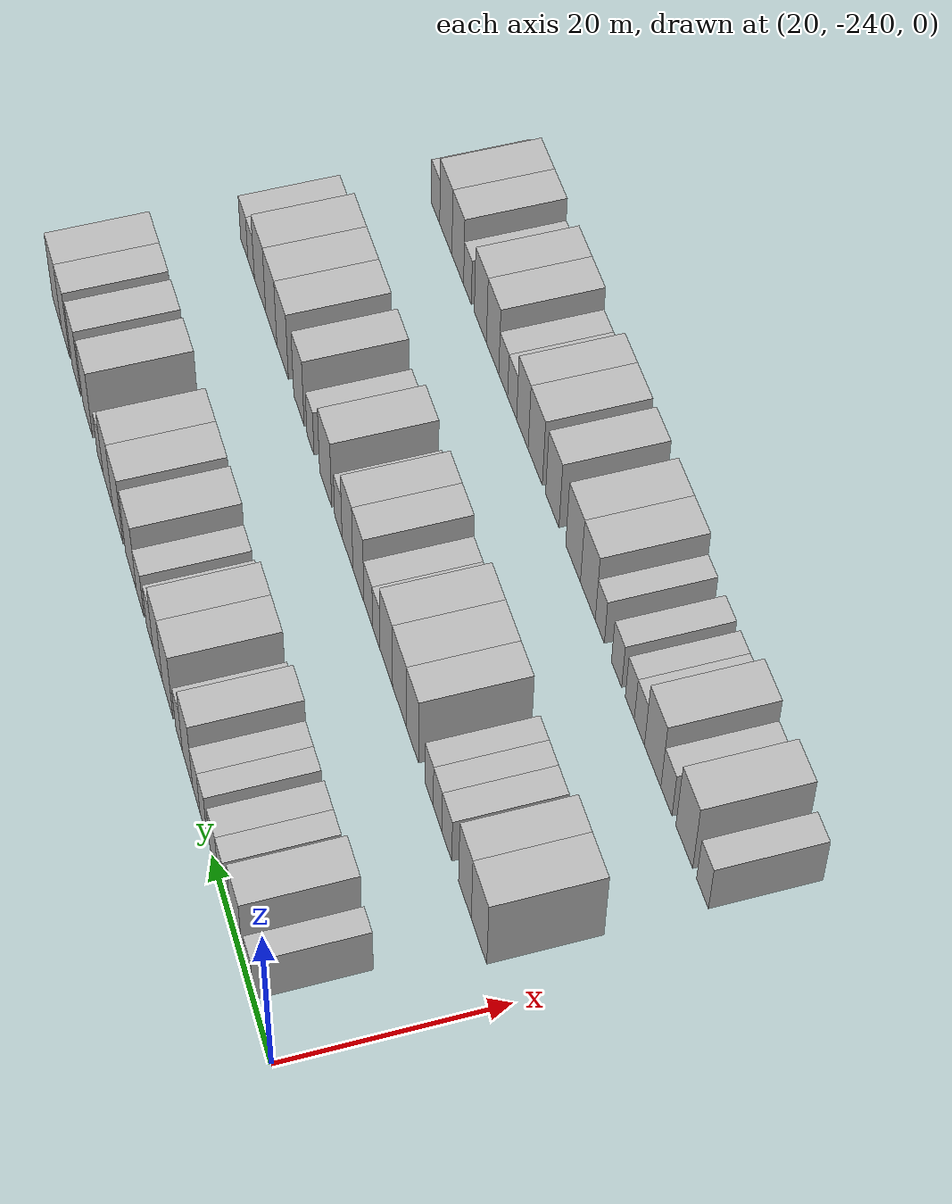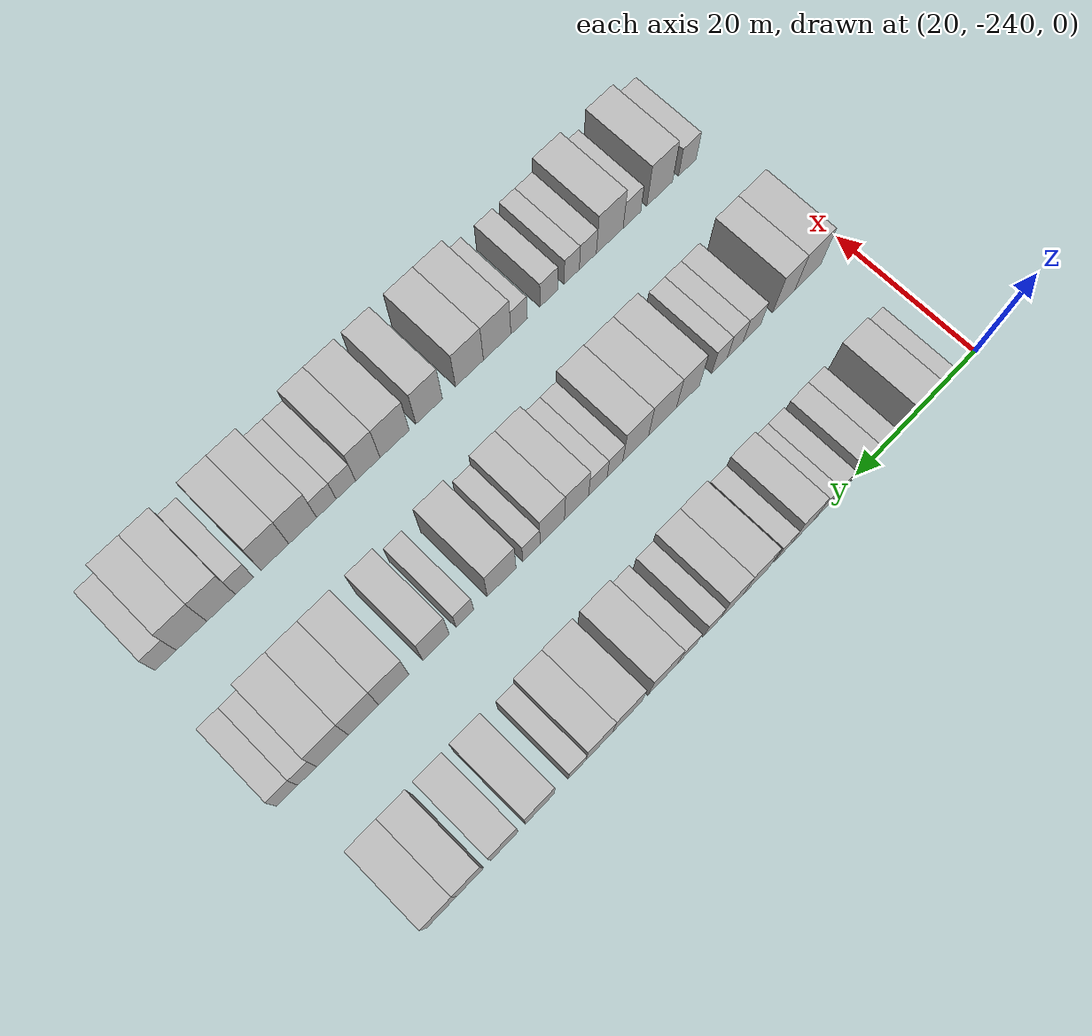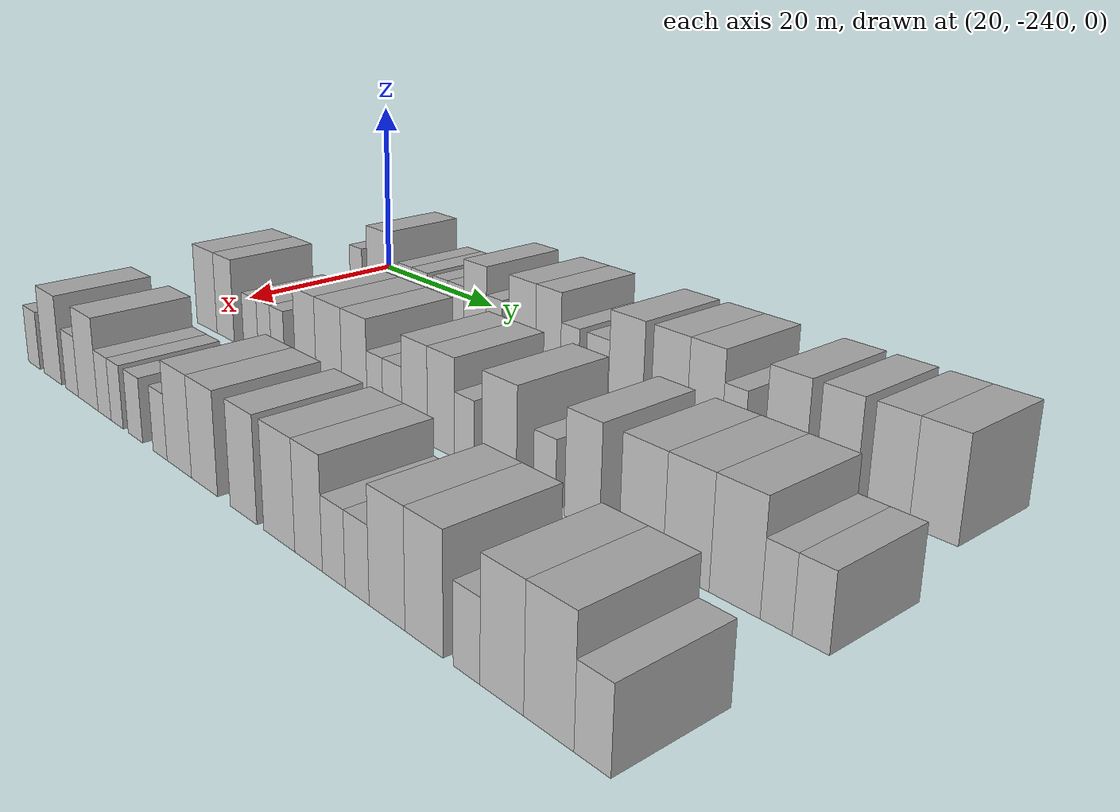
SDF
<sdf version="1.6">
 <world name="default">
  <model name="building_1">
   <static>1</static>
   <pose>25.0000 -232.7537 0 0.000000 0.000000 0.000000</pose>
   <link name="link">
    <pose>0 0 3.00 0 0 0</pose>
    <collision name="collision"><geometry><box><size>10.0000 2.4925 6.0000</size></box></geometry></collision>
    <visual name="visual">
     <cast_shadows>0</cast_shadows>
     <geometry><box><size>10.0000 2.4925 6.0000</size></box></geometry>
     <material>
      <script>
       <uri>model://HANNAS_wall/materials/scripts</uri>
       <uri>model://HANNAS_wall/materials/textures</uri>
       <name>vrc/HANNAS_wall</name>
      </script>
     </material>
    </visual>
   </link>
  </model>
  <model name="building_2">
   <static>1</static>
   <pose>25.0000 -228.5154 0 0.000000 0.000000 0.000000</pose>
   <link name="link">
    <pose>0 0 4.50 0 0 0</pose>
    <collision name="collision"><geometry><box><size>10.0000 3.9841 9.0000</size></box></geometry></collision>
    <visual name="visual">
     <cast_shadows>0</cast_shadows>
     <geometry><box><size>10.0000 3.9841 9.0000</size></box></geometry>
     <material>
      <script>
       <uri>model://HANNAS_wall/materials/scripts</uri>
       <uri>model://HANNAS_wall/materials/textures</uri>
       <name>vrc/HANNAS_wall</name>
      </script>
     </material>
    </visual>
   </link>
  </model>
  <model name="building_3">
   <static>1</static>
   <pose>25.0000 -223.2661 0 0.000000 0.000000 0.000000</pose>
   <link name="link">
    <pose>0 0 3.00 0 0 0</pose>
    <collision name="collision"><geometry><box><size>10.0000 2.5146 6.0000</size></box></geometry></collision>
    <visual name="visual">
     <cast_shadows>0</cast_shadows>
     <geometry><box><size>10.0000 2.5146 6.0000</size></box></geometry>
     <material>
      <script>
       <uri>model://HANNAS_wall/materials/scripts</uri>
       <uri>model://HANNAS_wall/materials/textures</uri>
       <name>vrc/HANNAS_wall</name>
      </script>
     </material>
    </visual>
   </link>
  </model>
  <model name="building_4">
   <static>1</static>
   <pose>25.0000 -220.5553 0 0.000000 0.000000 0.000000</pose>
   <link name="link">
    <pose>0 0 3.00 0 0 0</pose>
    <collision name="collision"><geometry><box><size>10.0000 2.9072 6.0000</size></box></geometry></collision>
    <visual name="visual">
     <cast_shadows>0</cast_shadows>
     <geometry><box><size>10.0000 2.9072 6.0000</size></box></geometry>
     <material>
      <script>
       <uri>model://HANNAS_wall/materials/scripts</uri>
       <uri>model://HANNAS_wall/materials/textures</uri>
       <name>vrc/HANNAS_wall</name>
      </script>
     </material>
    </visual>
   </link>
  </model>
  <model name="building_5">
   <static>1</static>
   <pose>25.0000 -216.8551 0 0.000000 0.000000 0.000000</pose>
   <link name="link">
    <pose>0 0 3.00 0 0 0</pose>
    <collision name="collision"><geometry><box><size>10.0000 2.4931 6.0000</size></box></geometry></collision>
    <visual name="visual">
     <cast_shadows>0</cast_shadows>
     <geometry><box><size>10.0000 2.4931 6.0000</size></box></geometry>
     <material>
      <script>
       <uri>model://HANNAS_wall/materials/scripts</uri>
       <uri>model://HANNAS_wall/materials/textures</uri>
       <name>vrc/HANNAS_wall</name>
      </script>
     </material>
    </visual>
   </link>
  </model>
  <model name="building_6">
   <static>1</static>
   <pose>25.0000 -214.2833 0 0.000000 0.000000 0.000000</pose>
   <link name="link">
    <pose>0 0 3.00 0 0 0</pose>
    <collision name="collision"><geometry><box><size>10.0000 2.6505 6.0000</size></box></geometry></collision>
    <visual name="visual">
     <cast_shadows>0</cast_shadows>
     <geometry><box><size>10.0000 2.6505 6.0000</size></box></geometry>
     <material>
      <script>
       <uri>model://HANNAS_wall/materials/scripts</uri>
       <uri>model://HANNAS_wall/materials/textures</uri>
       <name>vrc/HANNAS_wall</name>
      </script>
     </material>
    </visual>
   </link>
  </model>
  <model name="building_7">
   <static>1</static>
   <pose>25.0000 -211.0979 0 0.000000 0.000000 0.000000</pose>
   <link name="link">
    <pose>0 0 4.50 0 0 0</pose>
    <collision name="collision"><geometry><box><size>10.0000 3.7204 9.0000</size></box></geometry></collision>
    <visual name="visual">
     <cast_shadows>0</cast_shadows>
     <geometry><box><size>10.0000 3.7204 9.0000</size></box></geometry>
     <material>
      <script>
       <uri>model://HANNAS_wall/materials/scripts</uri>
       <uri>model://HANNAS_wall/materials/textures</uri>
       <name>vrc/HANNAS_wall</name>
      </script>
     </material>
    </visual>
   </link>
  </model>
  <model name="building_8">
   <static>1</static>
   <pose>25.0000 -207.9885 0 0.000000 0.000000 0.000000</pose>
   <link name="link">
    <pose>0 0 3.00 0 0 0</pose>
    <collision name="collision"><geometry><box><size>10.0000 2.4984 6.0000</size></box></geometry></collision>
    <visual name="visual">
     <cast_shadows>0</cast_shadows>
     <geometry><box><size>10.0000 2.4984 6.0000</size></box></geometry>
     <material>
      <script>
       <uri>model://HANNAS_wall/materials/scripts</uri>
       <uri>model://HANNAS_wall/materials/textures</uri>
       <name>vrc/HANNAS_wall</name>
      </script>
     </material>
    </visual>
   </link>
  </model>
  <model name="building_9">
   <static>1</static>
   <pose>25.0000 -203.7251 0 0.000000 0.000000 0.000000</pose>
   <link name="link">
    <pose>0 0 4.50 0 0 0</pose>
    <collision name="collision"><geometry><box><size>10.0000 4.0283 9.0000</size></box></geometry></collision>
    <visual name="visual">
     <cast_shadows>0</cast_shadows>
     <geometry><box><size>10.0000 4.0283 9.0000</size></box></geometry>
     <material>
      <script>
       <uri>model://HANNAS_wall/materials/scripts</uri>
       <uri>model://HANNAS_wall/materials/textures</uri>
       <name>vrc/HANNAS_wall</name>
      </script>
     </material>
    </visual>
   </link>
  </model>
  <model name="building_10">
   <static>1</static>
   <pose>25.0000 -199.9079 0 0.000000 0.000000 0.000000</pose>
   <link name="link">
    <pose>0 0 4.50 0 0 0</pose>
    <collision name="collision"><geometry><box><size>10.0000 3.6059 9.0000</size></box></geometry></collision>
    <visual name="visual">
     <cast_shadows>0</cast_shadows>
     <geometry><box><size>10.0000 3.6059 9.0000</size></box></geometry>
     <material>
      <script>
       <uri>model://HANNAS_wall/materials/scripts</uri>
       <uri>model://HANNAS_wall/materials/textures</uri>
       <name>vrc/HANNAS_wall</name>
      </script>
     </material>
    </visual>
   </link>
  </model>
  <model name="building_11">
   <static>1</static>
   <pose>25.0000 -196.8338 0 0.000000 0.000000 0.000000</pose>
   <link name="link">
    <pose>0 0 3.00 0 0 0</pose>
    <collision name="collision"><geometry><box><size>10.0000 2.5424 6.0000</size></box></geometry></collision>
    <visual name="visual">
     <cast_shadows>0</cast_shadows>
     <geometry><box><size>10.0000 2.5424 6.0000</size></box></geometry>
     <material>
      <script>
       <uri>model://HANNAS_wall/materials/scripts</uri>
       <uri>model://HANNAS_wall/materials/textures</uri>
       <name>vrc/HANNAS_wall</name>
      </script>
     </material>
    </visual>
   </link>
  </model>
  <model name="building_12">
   <static>1</static>
   <pose>25.0000 -193.0721 0 0.000000 0.000000 0.000000</pose>
   <link name="link">
    <pose>0 0 3.00 0 0 0</pose>
    <collision name="collision"><geometry><box><size>10.0000 2.9810 6.0000</size></box></geometry></collision>
    <visual name="visual">
     <cast_shadows>0</cast_shadows>
     <geometry><box><size>10.0000 2.9810 6.0000</size></box></geometry>
     <material>
      <script>
       <uri>model://HANNAS_wall/materials/scripts</uri>
       <uri>model://HANNAS_wall/materials/textures</uri>
       <name>vrc/HANNAS_wall</name>
      </script>
     </material>
    </visual>
   </link>
  </model>
  <model name="building_13">
   <static>1</static>
   <pose>25.0000 -189.4063 0 0.000000 0.000000 0.000000</pose>
   <link name="link">
    <pose>0 0 4.50 0 0 0</pose>
    <collision name="collision"><geometry><box><size>10.0000 4.3505 9.0000</size></box></geometry></collision>
    <visual name="visual">
     <cast_shadows>0</cast_shadows>
     <geometry><box><size>10.0000 4.3505 9.0000</size></box></geometry>
     <material>
      <script>
       <uri>model://HANNAS_wall/materials/scripts</uri>
       <uri>model://HANNAS_wall/materials/textures</uri>
       <name>vrc/HANNAS_wall</name>
      </script>
     </material>
    </visual>
   </link>
  </model>
  <model name="building_14">
   <static>1</static>
   <pose>25.0000 -184.1041 0 0.000000 0.000000 0.000000</pose>
   <link name="link">
    <pose>0 0 4.50 0 0 0</pose>
    <collision name="collision"><geometry><box><size>10.0000 4.2540 9.0000</size></box></geometry></collision>
    <visual name="visual">
     <cast_shadows>0</cast_shadows>
     <geometry><box><size>10.0000 4.2540 9.0000</size></box></geometry>
     <material>
      <script>
       <uri>model://HANNAS_wall/materials/scripts</uri>
       <uri>model://HANNAS_wall/materials/textures</uri>
       <name>vrc/HANNAS_wall</name>
      </script>
     </material>
    </visual>
   </link>
  </model>
  <model name="building_15">
   <static>1</static>
   <pose>25.0000 -180.0002 0 0.000000 0.000000 0.000000</pose>
   <link name="link">
    <pose>0 0 4.50 0 0 0</pose>
    <collision name="collision"><geometry><box><size>10.0000 3.9536 9.0000</size></box></geometry></collision>
    <visual name="visual">
     <cast_shadows>0</cast_shadows>
     <geometry><box><size>10.0000 3.9536 9.0000</size></box></geometry>
     <material>
      <script>
       <uri>model://HANNAS_wall/materials/scripts</uri>
       <uri>model://HANNAS_wall/materials/textures</uri>
       <name>vrc/HANNAS_wall</name>
      </script>
     </material>
    </visual>
   </link>
  </model>
  <model name="building_16">
   <static>1</static>
   <pose>25.0000 -176.7750 0 0.000000 0.000000 0.000000</pose>
   <link name="link">
    <pose>0 0 3.00 0 0 0</pose>
    <collision name="collision"><geometry><box><size>10.0000 2.4969 6.0000</size></box></geometry></collision>
    <visual name="visual">
     <cast_shadows>0</cast_shadows>
     <geometry><box><size>10.0000 2.4969 6.0000</size></box></geometry>
     <material>
      <script>
       <uri>model://HANNAS_wall/materials/scripts</uri>
       <uri>model://HANNAS_wall/materials/textures</uri>
       <name>vrc/HANNAS_wall</name>
      </script>
     </material>
    </visual>
   </link>
  </model>
  <model name="building_17">
   <static>1</static>
   <pose>25.0000 -171.4529 0 0.000000 0.000000 0.000000</pose>
   <link name="link">
    <pose>0 0 4.50 0 0 0</pose>
    <collision name="collision"><geometry><box><size>10.0000 4.1472 9.0000</size></box></geometry></collision>
    <visual name="visual">
     <cast_shadows>0</cast_shadows>
     <geometry><box><size>10.0000 4.1472 9.0000</size></box></geometry>
     <material>
      <script>
       <uri>model://HANNAS_wall/materials/scripts</uri>
       <uri>model://HANNAS_wall/materials/textures</uri>
       <name>vrc/HANNAS_wall</name>
      </script>
     </material>
    </visual>
   </link>
  </model>
  <model name="building_18">
   <static>1</static>
   <pose>25.0000 -166.4618 0 0.000000 0.000000 0.000000</pose>
   <link name="link">
    <pose>0 0 4.50 0 0 0</pose>
    <collision name="collision"><geometry><box><size>10.0000 3.8350 9.0000</size></box></geometry></collision>
    <visual name="visual">
     <cast_shadows>0</cast_shadows>
     <geometry><box><size>10.0000 3.8350 9.0000</size></box></geometry>
     <material>
      <script>
       <uri>model://HANNAS_wall/materials/scripts</uri>
       <uri>model://HANNAS_wall/materials/textures</uri>
       <name>vrc/HANNAS_wall</name>
      </script>
     </material>
    </visual>
   </link>
  </model>
  <model name="building_19">
   <static>1</static>
   <pose>25.0000 -161.6839 0 0.000000 0.000000 0.000000</pose>
   <link name="link">
    <pose>0 0 4.50 0 0 0</pose>
    <collision name="collision"><geometry><box><size>10.0000 3.7208 9.0000</size></box></geometry></collision>
    <visual name="visual">
     <cast_shadows>0</cast_shadows>
     <geometry><box><size>10.0000 3.7208 9.0000</size></box></geometry>
     <material>
      <script>
       <uri>model://HANNAS_wall/materials/scripts</uri>
       <uri>model://HANNAS_wall/materials/textures</uri>
       <name>vrc/HANNAS_wall</name>
      </script>
     </material>
    </visual>
   </link>
  </model>
  <model name="building_20">
   <static>1</static>
   <pose>25.0000 -157.7794 0 0.000000 0.000000 0.000000</pose>
   <link name="link">
    <pose>0 0 4.50 0 0 0</pose>
    <collision name="collision"><geometry><box><size>10.0000 4.0881 9.0000</size></box></geometry></collision>
    <visual name="visual">
     <cast_shadows>0</cast_shadows>
     <geometry><box><size>10.0000 4.0881 9.0000</size></box></geometry>
     <material>
      <script>
       <uri>model://HANNAS_wall/materials/scripts</uri>
       <uri>model://HANNAS_wall/materials/textures</uri>
       <name>vrc/HANNAS_wall</name>
      </script>
     </material>
    </visual>
   </link>
  </model>
  <model name="building_123">
   <static>1</static>
   <pose>44.0000 -233.7821 0 0.000000 0.000000 0.000000</pose>
   <link name="link">
    <pose>0 0 4.50 0 0 0</pose>
    <collision name="collision"><geometry><box><size>10.0000 4.4358 9.0000</size></box></geometry></collision>
    <visual name="visual">
     <cast_shadows>0</cast_shadows>
     <geometry><box><size>10.0000 4.4358 9.0000</size></box></geometry>
     <material>
      <script>
       <uri>model://HANNAS_wall/materials/scripts</uri>
       <uri>model://HANNAS_wall/materials/textures</uri>
       <name>vrc/HANNAS_wall</name>
      </script>
     </material>
    </visual>
   </link>
  </model>
  <model name="building_124">
   <static>1</static>
   <pose>44.0000 -229.7190 0 0.000000 0.000000 0.000000</pose>
   <link name="link">
    <pose>0 0 4.50 0 0 0</pose>
    <collision name="collision"><geometry><box><size>10.0000 3.6904 9.0000</size></box></geometry></collision>
    <visual name="visual">
     <cast_shadows>0</cast_shadows>
     <geometry><box><size>10.0000 3.6904 9.0000</size></box></geometry>
     <material>
      <script>
       <uri>model://HANNAS_wall/materials/scripts</uri>
       <uri>model://HANNAS_wall/materials/textures</uri>
       <name>vrc/HANNAS_wall</name>
      </script>
     </material>
    </visual>
   </link>
  </model>
  <model name="building_125">
   <static>1</static>
   <pose>44.0000 -224.3954 0 0.000000 0.000000 0.000000</pose>
   <link name="link">
    <pose>0 0 3.00 0 0 0</pose>
    <collision name="collision"><geometry><box><size>10.0000 2.9570 6.0000</size></box></geometry></collision>
    <visual name="visual">
     <cast_shadows>0</cast_shadows>
     <geometry><box><size>10.0000 2.9570 6.0000</size></box></geometry>
     <material>
      <script>
       <uri>model://HANNAS_wall/materials/scripts</uri>
       <uri>model://HANNAS_wall/materials/textures</uri>
       <name>vrc/HANNAS_wall</name>
      </script>
     </material>
    </visual>
   </link>
  </model>
  <model name="building_126">
   <static>1</static>
   <pose>44.0000 -221.6216 0 0.000000 0.000000 0.000000</pose>
   <link name="link">
    <pose>0 0 3.00 0 0 0</pose>
    <collision name="collision"><geometry><box><size>10.0000 2.5906 6.0000</size></box></geometry></collision>
    <visual name="visual">
     <cast_shadows>0</cast_shadows>
     <geometry><box><size>10.0000 2.5906 6.0000</size></box></geometry>
     <material>
      <script>
       <uri>model://HANNAS_wall/materials/scripts</uri>
       <uri>model://HANNAS_wall/materials/textures</uri>
       <name>vrc/HANNAS_wall</name>
      </script>
     </material>
    </visual>
   </link>
  </model>
  <model name="building_127">
   <static>1</static>
   <pose>44.0000 -219.0608 0 0.000000 0.000000 0.000000</pose>
   <link name="link">
    <pose>0 0 3.00 0 0 0</pose>
    <collision name="collision"><geometry><box><size>10.0000 2.5308 6.0000</size></box></geometry></collision>
    <visual name="visual">
     <cast_shadows>0</cast_shadows>
     <geometry><box><size>10.0000 2.5308 6.0000</size></box></geometry>
     <material>
      <script>
       <uri>model://HANNAS_wall/materials/scripts</uri>
       <uri>model://HANNAS_wall/materials/textures</uri>
       <name>vrc/HANNAS_wall</name>
      </script>
     </material>
    </visual>
   </link>
  </model>
  <model name="building_128">
   <static>1</static>
   <pose>44.0000 -213.9238 0 0.000000 0.000000 0.000000</pose>
   <link name="link">
    <pose>0 0 4.50 0 0 0</pose>
    <collision name="collision"><geometry><box><size>10.0000 3.7433 9.0000</size></box></geometry></collision>
    <visual name="visual">
     <cast_shadows>0</cast_shadows>
     <geometry><box><size>10.0000 3.7433 9.0000</size></box></geometry>
     <material>
      <script>
       <uri>model://HANNAS_wall/materials/scripts</uri>
       <uri>model://HANNAS_wall/materials/textures</uri>
       <name>vrc/HANNAS_wall</name>
      </script>
     </material>
    </visual>
   </link>
  </model>
  <model name="building_129">
   <static>1</static>
   <pose>44.0000 -209.8385 0 0.000000 0.000000 0.000000</pose>
   <link name="link">
    <pose>0 0 4.50 0 0 0</pose>
    <collision name="collision"><geometry><box><size>10.0000 4.4273 9.0000</size></box></geometry></collision>
    <visual name="visual">
     <cast_shadows>0</cast_shadows>
     <geometry><box><size>10.0000 4.4273 9.0000</size></box></geometry>
     <material>
      <script>
       <uri>model://HANNAS_wall/materials/scripts</uri>
       <uri>model://HANNAS_wall/materials/textures</uri>
       <name>vrc/HANNAS_wall</name>
      </script>
     </material>
    </visual>
   </link>
  </model>
  <model name="building_130">
   <static>1</static>
   <pose>44.0000 -205.5929 0 0.000000 0.000000 0.000000</pose>
   <link name="link">
    <pose>0 0 4.50 0 0 0</pose>
    <collision name="collision"><geometry><box><size>10.0000 4.0639 9.0000</size></box></geometry></collision>
    <visual name="visual">
     <cast_shadows>0</cast_shadows>
     <geometry><box><size>10.0000 4.0639 9.0000</size></box></geometry>
     <material>
      <script>
       <uri>model://HANNAS_wall/materials/scripts</uri>
       <uri>model://HANNAS_wall/materials/textures</uri>
       <name>vrc/HANNAS_wall</name>
      </script>
     </material>
    </visual>
   </link>
  </model>
  <model name="building_131">
   <static>1</static>
   <pose>44.0000 -202.3468 0 0.000000 0.000000 0.000000</pose>
   <link name="link">
    <pose>0 0 3.00 0 0 0</pose>
    <collision name="collision"><geometry><box><size>10.0000 2.4283 6.0000</size></box></geometry></collision>
    <visual name="visual">
     <cast_shadows>0</cast_shadows>
     <geometry><box><size>10.0000 2.4283 6.0000</size></box></geometry>
     <material>
      <script>
       <uri>model://HANNAS_wall/materials/scripts</uri>
       <uri>model://HANNAS_wall/materials/textures</uri>
       <name>vrc/HANNAS_wall</name>
      </script>
     </material>
    </visual>
   </link>
  </model>
  <model name="building_132">
   <static>1</static>
   <pose>44.0000 -199.6904 0 0.000000 0.000000 0.000000</pose>
   <link name="link">
    <pose>0 0 3.00 0 0 0</pose>
    <collision name="collision"><geometry><box><size>10.0000 2.8846 6.0000</size></box></geometry></collision>
    <visual name="visual">
     <cast_shadows>0</cast_shadows>
     <geometry><box><size>10.0000 2.8846 6.0000</size></box></geometry>
     <material>
      <script>
       <uri>model://HANNAS_wall/materials/scripts</uri>
       <uri>model://HANNAS_wall/materials/textures</uri>
       <name>vrc/HANNAS_wall</name>
      </script>
     </material>
    </visual>
   </link>
  </model>
  <model name="building_133">
   <static>1</static>
   <pose>44.0000 -196.4060 0 0.000000 0.000000 0.000000</pose>
   <link name="link">
    <pose>0 0 4.50 0 0 0</pose>
    <collision name="collision"><geometry><box><size>10.0000 3.6841 9.0000</size></box></geometry></collision>
    <visual name="visual">
     <cast_shadows>0</cast_shadows>
     <geometry><box><size>10.0000 3.6841 9.0000</size></box></geometry>
     <material>
      <script>
       <uri>model://HANNAS_wall/materials/scripts</uri>
       <uri>model://HANNAS_wall/materials/textures</uri>
       <name>vrc/HANNAS_wall</name>
      </script>
     </material>
    </visual>
   </link>
  </model>
  <model name="building_134">
   <static>1</static>
   <pose>44.0000 -192.7086 0 0.000000 0.000000 0.000000</pose>
   <link name="link">
    <pose>0 0 4.50 0 0 0</pose>
    <collision name="collision"><geometry><box><size>10.0000 3.7106 9.0000</size></box></geometry></collision>
    <visual name="visual">
     <cast_shadows>0</cast_shadows>
     <geometry><box><size>10.0000 3.7106 9.0000</size></box></geometry>
     <material>
      <script>
       <uri>model://HANNAS_wall/materials/scripts</uri>
       <uri>model://HANNAS_wall/materials/textures</uri>
       <name>vrc/HANNAS_wall</name>
      </script>
     </material>
    </visual>
   </link>
  </model>
  <model name="building_135">
   <static>1</static>
   <pose>44.0000 -189.5579 0 0.000000 0.000000 0.000000</pose>
   <link name="link">
    <pose>0 0 3.00 0 0 0</pose>
    <collision name="collision"><geometry><box><size>10.0000 2.5909 6.0000</size></box></geometry></collision>
    <visual name="visual">
     <cast_shadows>0</cast_shadows>
     <geometry><box><size>10.0000 2.5909 6.0000</size></box></geometry>
     <material>
      <script>
       <uri>model://HANNAS_wall/materials/scripts</uri>
       <uri>model://HANNAS_wall/materials/textures</uri>
       <name>vrc/HANNAS_wall</name>
      </script>
     </material>
    </visual>
   </link>
  </model>
  <model name="building_136">
   <static>1</static>
   <pose>44.0000 -185.1332 0 0.000000 0.000000 0.000000</pose>
   <link name="link">
    <pose>0 0 4.50 0 0 0</pose>
    <collision name="collision"><geometry><box><size>10.0000 4.2585 9.0000</size></box></geometry></collision>
    <visual name="visual">
     <cast_shadows>0</cast_shadows>
     <geometry><box><size>10.0000 4.2585 9.0000</size></box></geometry>
     <material>
      <script>
       <uri>model://HANNAS_wall/materials/scripts</uri>
       <uri>model://HANNAS_wall/materials/textures</uri>
       <name>vrc/HANNAS_wall</name>
      </script>
     </material>
    </visual>
   </link>
  </model>
  <model name="building_137">
   <static>1</static>
   <pose>44.0000 -179.7246 0 0.000000 0.000000 0.000000</pose>
   <link name="link">
    <pose>0 0 3.00 0 0 0</pose>
    <collision name="collision"><geometry><box><size>10.0000 2.5585 6.0000</size></box></geometry></collision>
    <visual name="visual">
     <cast_shadows>0</cast_shadows>
     <geometry><box><size>10.0000 2.5585 6.0000</size></box></geometry>
     <material>
      <script>
       <uri>model://HANNAS_wall/materials/scripts</uri>
       <uri>model://HANNAS_wall/materials/textures</uri>
       <name>vrc/HANNAS_wall</name>
      </script>
     </material>
    </visual>
   </link>
  </model>
  <model name="building_138">
   <static>1</static>
   <pose>44.0000 -175.5444 0 0.000000 0.000000 0.000000</pose>
   <link name="link">
    <pose>0 0 4.50 0 0 0</pose>
    <collision name="collision"><geometry><box><size>10.0000 3.8019 9.0000</size></box></geometry></collision>
    <visual name="visual">
     <cast_shadows>0</cast_shadows>
     <geometry><box><size>10.0000 3.8019 9.0000</size></box></geometry>
     <material>
      <script>
       <uri>model://HANNAS_wall/materials/scripts</uri>
       <uri>model://HANNAS_wall/materials/textures</uri>
       <name>vrc/HANNAS_wall</name>
      </script>
     </material>
    </visual>
   </link>
  </model>
  <model name="building_139">
   <static>1</static>
   <pose>44.0000 -169.4896 0 0.000000 0.000000 0.000000</pose>
   <link name="link">
    <pose>0 0 4.50 0 0 0</pose>
    <collision name="collision"><geometry><box><size>10.0000 4.3079 9.0000</size></box></geometry></collision>
    <visual name="visual">
     <cast_shadows>0</cast_shadows>
     <geometry><box><size>10.0000 4.3079 9.0000</size></box></geometry>
     <material>
      <script>
       <uri>model://HANNAS_wall/materials/scripts</uri>
       <uri>model://HANNAS_wall/materials/textures</uri>
       <name>vrc/HANNAS_wall</name>
      </script>
     </material>
    </visual>
   </link>
  </model>
  <model name="building_140">
   <static>1</static>
   <pose>44.0000 -165.2100 0 0.000000 0.000000 0.000000</pose>
   <link name="link">
    <pose>0 0 4.50 0 0 0</pose>
    <collision name="collision"><geometry><box><size>10.0000 4.2513 9.0000</size></box></geometry></collision>
    <visual name="visual">
     <cast_shadows>0</cast_shadows>
     <geometry><box><size>10.0000 4.2513 9.0000</size></box></geometry>
     <material>
      <script>
       <uri>model://HANNAS_wall/materials/scripts</uri>
       <uri>model://HANNAS_wall/materials/textures</uri>
       <name>vrc/HANNAS_wall</name>
      </script>
     </material>
    </visual>
   </link>
  </model>
  <model name="building_141">
   <static>1</static>
   <pose>44.0000 -160.8977 0 0.000000 0.000000 0.000000</pose>
   <link name="link">
    <pose>0 0 4.50 0 0 0</pose>
    <collision name="collision"><geometry><box><size>10.0000 4.3733 9.0000</size></box></geometry></collision>
    <visual name="visual">
     <cast_shadows>0</cast_shadows>
     <geometry><box><size>10.0000 4.3733 9.0000</size></box></geometry>
     <material>
      <script>
       <uri>model://HANNAS_wall/materials/scripts</uri>
       <uri>model://HANNAS_wall/materials/textures</uri>
       <name>vrc/HANNAS_wall</name>
      </script>
     </material>
    </visual>
   </link>
  </model>
  <model name="building_142">
   <static>1</static>
   <pose>44.0000 -157.4275 0 0.000000 0.000000 0.000000</pose>
   <link name="link">
    <pose>0 0 3.00 0 0 0</pose>
    <collision name="collision"><geometry><box><size>10.0000 2.5669 6.0000</size></box></geometry></collision>
    <visual name="visual">
     <cast_shadows>0</cast_shadows>
     <geometry><box><size>10.0000 2.5669 6.0000</size></box></geometry>
     <material>
      <script>
       <uri>model://HANNAS_wall/materials/scripts</uri>
       <uri>model://HANNAS_wall/materials/textures</uri>
       <name>vrc/HANNAS_wall</name>
      </script>
     </material>
    </visual>
   </link>
  </model>
  <model name="building_143">
   <static>1</static>
   <pose>44.0000 -154.7033 0 0.000000 0.000000 0.000000</pose>
   <link name="link">
    <pose>0 0 3.00 0 0 0</pose>
    <collision name="collision"><geometry><box><size>10.0000 2.8816 6.0000</size></box></geometry></collision>
    <visual name="visual">
     <cast_shadows>0</cast_shadows>
     <geometry><box><size>10.0000 2.8816 6.0000</size></box></geometry>
     <material>
      <script>
       <uri>model://HANNAS_wall/materials/scripts</uri>
       <uri>model://HANNAS_wall/materials/textures</uri>
       <name>vrc/HANNAS_wall</name>
      </script>
     </material>
    </visual>
   </link>
  </model>
  <model name="building_251">
   <static>1</static>
   <pose>63.0000 -234.5047 0 0.000000 0.000000 0.000000</pose>
   <link name="link">
    <pose>0 0 3.00 0 0 0</pose>
    <collision name="collision"><geometry><box><size>10.0000 2.9907 6.0000</size></box></geometry></collision>
    <visual name="visual">
     <cast_shadows>0</cast_shadows>
     <geometry><box><size>10.0000 2.9907 6.0000</size></box></geometry>
     <material>
      <script>
       <uri>model://HANNAS_wall/materials/scripts</uri>
       <uri>model://HANNAS_wall/materials/textures</uri>
       <name>vrc/HANNAS_wall</name>
      </script>
     </material>
    </visual>
   </link>
  </model>
  <model name="building_252">
   <static>1</static>
   <pose>63.0000 -229.8399 0 0.000000 0.000000 0.000000</pose>
   <link name="link">
    <pose>0 0 4.50 0 0 0</pose>
    <collision name="collision"><geometry><box><size>10.0000 4.3389 9.0000</size></box></geometry></collision>
    <visual name="visual">
     <cast_shadows>0</cast_shadows>
     <geometry><box><size>10.0000 4.3389 9.0000</size></box></geometry>
     <material>
      <script>
       <uri>model://HANNAS_wall/materials/scripts</uri>
       <uri>model://HANNAS_wall/materials/textures</uri>
       <name>vrc/HANNAS_wall</name>
      </script>
     </material>
    </visual>
   </link>
  </model>
  <model name="building_253">
   <static>1</static>
   <pose>63.0000 -225.2068 0 0.000000 0.000000 0.000000</pose>
   <link name="link">
    <pose>0 0 3.00 0 0 0</pose>
    <collision name="collision"><geometry><box><size>10.0000 2.9273 6.0000</size></box></geometry></collision>
    <visual name="visual">
     <cast_shadows>0</cast_shadows>
     <geometry><box><size>10.0000 2.9273 6.0000</size></box></geometry>
     <material>
      <script>
       <uri>model://HANNAS_wall/materials/scripts</uri>
       <uri>model://HANNAS_wall/materials/textures</uri>
       <name>vrc/HANNAS_wall</name>
      </script>
     </material>
    </visual>
   </link>
  </model>
  <model name="building_254">
   <static>1</static>
   <pose>63.0000 -221.5437 0 0.000000 0.000000 0.000000</pose>
   <link name="link">
    <pose>0 0 4.50 0 0 0</pose>
    <collision name="collision"><geometry><box><size>10.0000 4.3991 9.0000</size></box></geometry></collision>
    <visual name="visual">
     <cast_shadows>0</cast_shadows>
     <geometry><box><size>10.0000 4.3991 9.0000</size></box></geometry>
     <material>
      <script>
       <uri>model://HANNAS_wall/materials/scripts</uri>
       <uri>model://HANNAS_wall/materials/textures</uri>
       <name>vrc/HANNAS_wall</name>
      </script>
     </material>
    </visual>
   </link>
  </model>
  <model name="building_255">
   <static>1</static>
   <pose>63.0000 -217.9619 0 0.000000 0.000000 0.000000</pose>
   <link name="link">
    <pose>0 0 3.00 0 0 0</pose>
    <collision name="collision"><geometry><box><size>10.0000 2.7644 6.0000</size></box></geometry></collision>
    <visual name="visual">
     <cast_shadows>0</cast_shadows>
     <geometry><box><size>10.0000 2.7644 6.0000</size></box></geometry>
     <material>
      <script>
       <uri>model://HANNAS_wall/materials/scripts</uri>
       <uri>model://HANNAS_wall/materials/textures</uri>
       <name>vrc/HANNAS_wall</name>
      </script>
     </material>
    </visual>
   </link>
  </model>
  <model name="building_256">
   <static>1</static>
   <pose>63.0000 -215.3477 0 0.000000 0.000000 0.000000</pose>
   <link name="link">
    <pose>0 0 3.00 0 0 0</pose>
    <collision name="collision"><geometry><box><size>10.0000 2.4641 6.0000</size></box></geometry></collision>
    <visual name="visual">
     <cast_shadows>0</cast_shadows>
     <geometry><box><size>10.0000 2.4641 6.0000</size></box></geometry>
     <material>
      <script>
       <uri>model://HANNAS_wall/materials/scripts</uri>
       <uri>model://HANNAS_wall/materials/textures</uri>
       <name>vrc/HANNAS_wall</name>
      </script>
     </material>
    </visual>
   </link>
  </model>
  <model name="building_257">
   <static>1</static>
   <pose>63.0000 -211.6910 0 0.000000 0.000000 0.000000</pose>
   <link name="link">
    <pose>0 0 3.00 0 0 0</pose>
    <collision name="collision"><geometry><box><size>10.0000 2.8493 6.0000</size></box></geometry></collision>
    <visual name="visual">
     <cast_shadows>0</cast_shadows>
     <geometry><box><size>10.0000 2.8493 6.0000</size></box></geometry>
     <material>
      <script>
       <uri>model://HANNAS_wall/materials/scripts</uri>
       <uri>model://HANNAS_wall/materials/textures</uri>
       <name>vrc/HANNAS_wall</name>
      </script>
     </material>
    </visual>
   </link>
  </model>
  <model name="building_258">
   <static>1</static>
   <pose>63.0000 -206.9742 0 0.000000 0.000000 0.000000</pose>
   <link name="link">
    <pose>0 0 3.00 0 0 0</pose>
    <collision name="collision"><geometry><box><size>10.0000 2.5844 6.0000</size></box></geometry></collision>
    <visual name="visual">
     <cast_shadows>0</cast_shadows>
     <geometry><box><size>10.0000 2.5844 6.0000</size></box></geometry>
     <material>
      <script>
       <uri>model://HANNAS_wall/materials/scripts</uri>
       <uri>model://HANNAS_wall/materials/textures</uri>
       <name>vrc/HANNAS_wall</name>
      </script>
     </material>
    </visual>
   </link>
  </model>
  <model name="building_259">
   <static>1</static>
   <pose>63.0000 -203.5331 0 0.000000 0.000000 0.000000</pose>
   <link name="link">
    <pose>0 0 4.50 0 0 0</pose>
    <collision name="collision"><geometry><box><size>10.0000 4.2977 9.0000</size></box></geometry></collision>
    <visual name="visual">
     <cast_shadows>0</cast_shadows>
     <geometry><box><size>10.0000 4.2977 9.0000</size></box></geometry>
     <material>
      <script>
       <uri>model://HANNAS_wall/materials/scripts</uri>
       <uri>model://HANNAS_wall/materials/textures</uri>
       <name>vrc/HANNAS_wall</name>
      </script>
     </material>
    </visual>
   </link>
  </model>
  <model name="building_260">
   <static>1</static>
   <pose>63.0000 -199.2250 0 0.000000 0.000000 0.000000</pose>
   <link name="link">
    <pose>0 0 4.50 0 0 0</pose>
    <collision name="collision"><geometry><box><size>10.0000 4.3184 9.0000</size></box></geometry></collision>
    <visual name="visual">
     <cast_shadows>0</cast_shadows>
     <geometry><box><size>10.0000 4.3184 9.0000</size></box></geometry>
     <material>
      <script>
       <uri>model://HANNAS_wall/materials/scripts</uri>
       <uri>model://HANNAS_wall/materials/textures</uri>
       <name>vrc/HANNAS_wall</name>
      </script>
     </material>
    </visual>
   </link>
  </model>
  <model name="building_261">
   <static>1</static>
   <pose>63.0000 -193.0500 0 0.000000 0.000000 0.000000</pose>
   <link name="link">
    <pose>0 0 4.50 0 0 0</pose>
    <collision name="collision"><geometry><box><size>10.0000 4.0317 9.0000</size></box></geometry></collision>
    <visual name="visual">
     <cast_shadows>0</cast_shadows>
     <geometry><box><size>10.0000 4.0317 9.0000</size></box></geometry>
     <material>
      <script>
       <uri>model://HANNAS_wall/materials/scripts</uri>
       <uri>model://HANNAS_wall/materials/textures</uri>
       <name>vrc/HANNAS_wall</name>
      </script>
     </material>
    </visual>
   </link>
  </model>
  <model name="building_262">
   <static>1</static>
   <pose>63.0000 -187.8540 0 0.000000 0.000000 0.000000</pose>
   <link name="link">
    <pose>0 0 4.50 0 0 0</pose>
    <collision name="collision"><geometry><box><size>10.0000 4.3604 9.0000</size></box></geometry></collision>
    <visual name="visual">
     <cast_shadows>0</cast_shadows>
     <geometry><box><size>10.0000 4.3604 9.0000</size></box></geometry>
     <material>
      <script>
       <uri>model://HANNAS_wall/materials/scripts</uri>
       <uri>model://HANNAS_wall/materials/textures</uri>
       <name>vrc/HANNAS_wall</name>
      </script>
     </material>
    </visual>
   </link>
  </model>
  <model name="building_263">
   <static>1</static>
   <pose>63.0000 -183.8641 0 0.000000 0.000000 0.000000</pose>
   <link name="link">
    <pose>0 0 4.50 0 0 0</pose>
    <collision name="collision"><geometry><box><size>10.0000 3.6193 9.0000</size></box></geometry></collision>
    <visual name="visual">
     <cast_shadows>0</cast_shadows>
     <geometry><box><size>10.0000 3.6193 9.0000</size></box></geometry>
     <material>
      <script>
       <uri>model://HANNAS_wall/materials/scripts</uri>
       <uri>model://HANNAS_wall/materials/textures</uri>
       <name>vrc/HANNAS_wall</name>
      </script>
     </material>
    </visual>
   </link>
  </model>
  <model name="building_264">
   <static>1</static>
   <pose>63.0000 -180.6343 0 0.000000 0.000000 0.000000</pose>
   <link name="link">
    <pose>0 0 3.00 0 0 0</pose>
    <collision name="collision"><geometry><box><size>10.0000 2.8404 6.0000</size></box></geometry></collision>
    <visual name="visual">
     <cast_shadows>0</cast_shadows>
     <geometry><box><size>10.0000 2.8404 6.0000</size></box></geometry>
     <material>
      <script>
       <uri>model://HANNAS_wall/materials/scripts</uri>
       <uri>model://HANNAS_wall/materials/textures</uri>
       <name>vrc/HANNAS_wall</name>
      </script>
     </material>
    </visual>
   </link>
  </model>
  <model name="building_265">
   <static>1</static>
   <pose>63.0000 -177.7908 0 0.000000 0.000000 0.000000</pose>
   <link name="link">
    <pose>0 0 3.00 0 0 0</pose>
    <collision name="collision"><geometry><box><size>10.0000 2.8466 6.0000</size></box></geometry></collision>
    <visual name="visual">
     <cast_shadows>0</cast_shadows>
     <geometry><box><size>10.0000 2.8466 6.0000</size></box></geometry>
     <material>
      <script>
       <uri>model://HANNAS_wall/materials/scripts</uri>
       <uri>model://HANNAS_wall/materials/textures</uri>
       <name>vrc/HANNAS_wall</name>
      </script>
     </material>
    </visual>
   </link>
  </model>
  <model name="building_266">
   <static>1</static>
   <pose>63.0000 -174.3583 0 0.000000 0.000000 0.000000</pose>
   <link name="link">
    <pose>0 0 4.50 0 0 0</pose>
    <collision name="collision"><geometry><box><size>10.0000 4.0184 9.0000</size></box></geometry></collision>
    <visual name="visual">
     <cast_shadows>0</cast_shadows>
     <geometry><box><size>10.0000 4.0184 9.0000</size></box></geometry>
     <material>
      <script>
       <uri>model://HANNAS_wall/materials/scripts</uri>
       <uri>model://HANNAS_wall/materials/textures</uri>
       <name>vrc/HANNAS_wall</name>
      </script>
     </material>
    </visual>
   </link>
  </model>
  <model name="building_267">
   <static>1</static>
   <pose>63.0000 -170.3568 0 0.000000 0.000000 0.000000</pose>
   <link name="link">
    <pose>0 0 4.50 0 0 0</pose>
    <collision name="collision"><geometry><box><size>10.0000 3.9846 9.0000</size></box></geometry></collision>
    <visual name="visual">
     <cast_shadows>0</cast_shadows>
     <geometry><box><size>10.0000 3.9846 9.0000</size></box></geometry>
     <material>
      <script>
       <uri>model://HANNAS_wall/materials/scripts</uri>
       <uri>model://HANNAS_wall/materials/textures</uri>
       <name>vrc/HANNAS_wall</name>
      </script>
     </material>
    </visual>
   </link>
  </model>
  <model name="building_268">
   <static>1</static>
   <pose>63.0000 -166.0701 0 0.000000 0.000000 0.000000</pose>
   <link name="link">
    <pose>0 0 3.00 0 0 0</pose>
    <collision name="collision"><geometry><box><size>10.0000 2.5887 6.0000</size></box></geometry></collision>
    <visual name="visual">
     <cast_shadows>0</cast_shadows>
     <geometry><box><size>10.0000 2.5887 6.0000</size></box></geometry>
     <material>
      <script>
       <uri>model://HANNAS_wall/materials/scripts</uri>
       <uri>model://HANNAS_wall/materials/textures</uri>
       <name>vrc/HANNAS_wall</name>
      </script>
     </material>
    </visual>
   </link>
  </model>
  <model name="building_269">
   <static>1</static>
   <pose>63.0000 -162.7900 0 0.000000 0.000000 0.000000</pose>
   <link name="link">
    <pose>0 0 4.50 0 0 0</pose>
    <collision name="collision"><geometry><box><size>10.0000 3.9715 9.0000</size></box></geometry></collision>
    <visual name="visual">
     <cast_shadows>0</cast_shadows>
     <geometry><box><size>10.0000 3.9715 9.0000</size></box></geometry>
     <material>
      <script>
       <uri>model://HANNAS_wall/materials/scripts</uri>
       <uri>model://HANNAS_wall/materials/textures</uri>
       <name>vrc/HANNAS_wall</name>
      </script>
     </material>
    </visual>
   </link>
  </model>
  <model name="building_270">
   <static>1</static>
   <pose>63.0000 -158.6979 0 0.000000 0.000000 0.000000</pose>
   <link name="link">
    <pose>0 0 4.50 0 0 0</pose>
    <collision name="collision"><geometry><box><size>10.0000 4.2129 9.0000</size></box></geometry></collision>
    <visual name="visual">
     <cast_shadows>0</cast_shadows>
     <geometry><box><size>10.0000 4.2129 9.0000</size></box></geometry>
     <material>
      <script>
       <uri>model://HANNAS_wall/materials/scripts</uri>
       <uri>model://HANNAS_wall/materials/textures</uri>
       <name>vrc/HANNAS_wall</name>
      </script>
     </material>
    </visual>
   </link>
  </model>
  <model name="building_271">
   <static>1</static>
   <pose>63.0000 -155.1437 0 0.000000 0.000000 0.000000</pose>
   <link name="link">
    <pose>0 0 3.00 0 0 0</pose>
    <collision name="collision"><geometry><box><size>10.0000 2.8955 6.0000</size></box></geometry></collision>
    <visual name="visual">
     <cast_shadows>0</cast_shadows>
     <geometry><box><size>10.0000 2.8955 6.0000</size></box></geometry>
     <material>
      <script>
       <uri>model://HANNAS_wall/materials/scripts</uri>
       <uri>model://HANNAS_wall/materials/textures</uri>
       <name>vrc/HANNAS_wall</name>
      </script>
     </material>
    </visual>
   </link>
  </model>
 </world>
</sdf>
